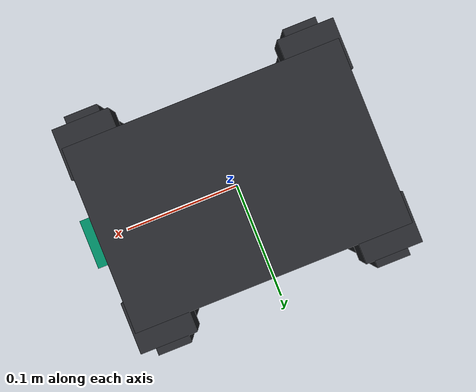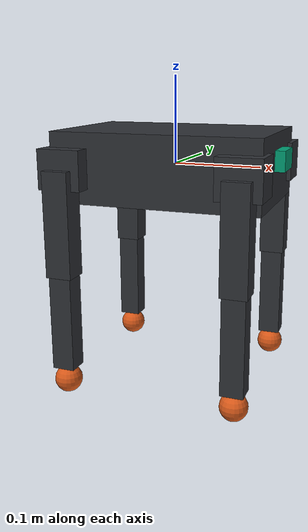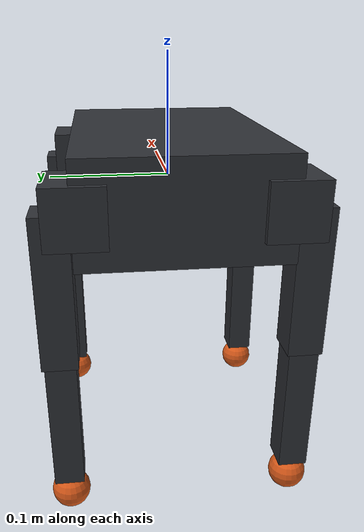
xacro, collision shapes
<?xml version="1.0"?>
<!--
  Copyright (c) 2026 Mustafa Gulsoy.
  SPDX-License-Identifier: AGPL-3.0-or-later
-->
<robot xmlns:xacro="http://www.ros.org/wiki/xacro" name="quadruped_v2">

  <xacro:arg name="use_sim" default="true"/>
  <!-- Topic prefix the topic_based hardware talks to on real hardware; the
       STM32 owns the 1 kHz loop and speaks micro-ROS on these topics. -->
  <xacro:arg name="hw_topic_ns" default="motion"/>

  <xacro:include filename="$(find neml_description)/urdf/inertia.xacro"/>
  <xacro:include filename="$(find neml_description)/urdf/leg.xacro"/>
  <xacro:include filename="$(find neml_description)/urdf/quadruped_v2.ros2_control.xacro"/>

  <xacro:property name="body_len"    value="0.240"/>
  <xacro:property name="body_wid"    value="0.160"/>
  <xacro:property name="body_h"      value="0.080"/>
  <xacro:property name="hip_x"       value="0.100"/>
  <xacro:property name="hip_y"       value="0.065"/>
  <xacro:property name="hip_z"       value="0.000"/>
  <xacro:property name="upper_len"   value="0.120"/>
  <xacro:property name="lower_len"   value="0.110"/>
  <xacro:property name="foot_radius" value="0.016"/>

  <xacro:property name="joint_effort_nm"     value="2.5"/>
  <xacro:property name="joint_velocity_rads" value="6.0"/>

  <!-- Calibration knobs (SS11.3 fit targets: joint damping, friction).
       scripts/calibration/ writes these back after a reality-gap run. -->
  <xacro:property name="joint_damping"  value="0.020"/>
  <xacro:property name="joint_friction" value="0.005"/>

  <!-- Joint travel. Mechanical hard stops, not a control policy. -->
  <xacro:property name="hip_yaw_range"   value="0.70"/>
  <xacro:property name="hip_pitch_range" value="1.60"/>
  <xacro:property name="knee_range"      value="2.40"/>
  <xacro:property name="ankle_range"     value="1.40"/>

  <material name="neml_shell"><color rgba="0.18 0.19 0.21 1.0"/></material>
  <material name="neml_tpu"><color rgba="0.85 0.35 0.10 1.0"/></material>

  <!-- ============================ body ============================ -->
  <link name="base_link">
    <inertial>
      <origin xyz="0 0 0" rpy="0 0 0"/>
      <mass value="${base_mass}"/>
      <inertia ixx="${base_ixx}" ixy="${base_ixy}" ixz="${base_ixz}"
               iyy="${base_iyy}" iyz="${base_iyz}" izz="${base_izz}"/>
    </inertial>
    <visual>
      <origin xyz="0 0 0" rpy="0 0 0"/>
      <geometry>
        <mesh filename="package://neml_description/meshes/body_shell.stl" scale="1 1 1"/>
      </geometry>
      <material name="neml_shell"/>
    </visual>
    <collision>
      <!-- primitive box, deliberately not the shell mesh (SS12.2) -->
      <origin xyz="0 0 0" rpy="0 0 0"/>
      <geometry>
        <box size="${body_len} ${body_wid} ${body_h}"/>
      </geometry>
    </collision>
  </link>

  <!-- ============================ legs ============================
       prefix: f/r = front/rear, l/r = left/right. -->
  <xacro:neml_leg prefix="fl" x_sign="1"  y_sign="1"/>
  <xacro:neml_leg prefix="fr" x_sign="1"  y_sign="-1"/>
  <xacro:neml_leg prefix="rl" x_sign="-1" y_sign="1"/>
  <xacro:neml_leg prefix="rr" x_sign="-1" y_sign="-1"/>

  <!-- =========================== bno085 IMU =========================== -->
  <link name="imu_link"/>
  <joint name="imu_joint" type="fixed">
    <parent link="base_link"/>
    <child link="imu_link"/>
    <origin xyz="0 0 ${body_h / 2}" rpy="0 0 0"/>
  </joint>
  <gazebo reference="imu_link">
    <sensor name="bno085" type="imu">
      <always_on>true</always_on>
      <update_rate>100</update_rate>
      <!-- SS11.4 nominal gyro noise sigma 0.01 rad/s; the sim runner
           randomizes it +-15% from the run seed, never from wall clock. -->
      <imu>
        <angular_velocity>
          <x><noise type="gaussian"><mean>0.0</mean><stddev>0.01</stddev></noise></x>
          <y><noise type="gaussian"><mean>0.0</mean><stddev>0.01</stddev></noise></y>
          <z><noise type="gaussian"><mean>0.0</mean><stddev>0.01</stddev></noise></z>
        </angular_velocity>
        <linear_acceleration>
          <x><noise type="gaussian"><mean>0.0</mean><stddev>0.05</stddev></noise></x>
          <y><noise type="gaussian"><mean>0.0</mean><stddev>0.05</stddev></noise></y>
          <z><noise type="gaussian"><mean>0.0</mean><stddev>0.05</stddev></noise></z>
        </linear_acceleration>
      </imu>
    </sensor>
  </gazebo>

  <!-- ====================== realsense d405 depth ====================== -->
  <link name="camera_link">
    <inertial>
      <origin xyz="0 0 0" rpy="0 0 0"/>
      <mass value="0.042"/>
      <inertia ixx="0.0000060" ixy="0.0" ixz="0.0"
               iyy="0.0000020" iyz="0.0" izz="0.0000060"/>
    </inertial>
    <collision>
      <origin xyz="0 0 0" rpy="0 0 0"/>
      <geometry>
        <box size="0.023 0.042 0.023"/>
      </geometry>
    </collision>
  </link>
  <joint name="camera_joint" type="fixed">
    <parent link="base_link"/>
    <child link="camera_link"/>
    <origin xyz="${body_len / 2} 0 0.010" rpy="0 0 0"/>
  </joint>
  <!-- REP-103 optical frame: z forward, x right, y down -->
  <link name="camera_depth_optical_frame"/>
  <joint name="camera_depth_optical_joint" type="fixed">
    <parent link="camera_link"/>
    <child link="camera_depth_optical_frame"/>
    <origin xyz="0 0 0" rpy="${-pi/2} 0 ${-pi/2}"/>
  </joint>
  <gazebo reference="camera_link">
    <sensor name="d405" type="rgbd_camera">
      <always_on>true</always_on>
      <update_rate>15</update_rate>
      <topic>d405</topic>
      <gz_frame_id>camera_depth_optical_frame</gz_frame_id>
      <camera>
        <horizontal_fov>1.274</horizontal_fov>
        <image><width>424</width><height>240</height><format>R8G8B8</format></image>
        <clip><near>0.07</near><far>3.0</far></clip>
      </camera>
    </sensor>
  </gazebo>

  <link name="ina226_5v_link"/>
  <joint name="ina226_5v_joint" type="fixed">
    <parent link="base_link"/>
    <child link="ina226_5v_link"/>
    <origin xyz="-0.060 0.040 0.0" rpy="0 0 0"/>
  </joint>
  <link name="ina226_3v3_link"/>
  <joint name="ina226_3v3_joint" type="fixed">
    <parent link="base_link"/>
    <child link="ina226_3v3_link"/>
    <origin xyz="-0.060 -0.040 0.0" rpy="0 0 0"/>
  </joint>

  <!-- ========================= ros2_control ========================= -->
  <xacro:neml_ros2_control use_sim="$(arg use_sim)" hw_topic_ns="$(arg hw_topic_ns)"/>

</robot>

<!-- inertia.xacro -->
<!--
  Copyright (c) 2026 Mustafa Gulsoy.
  SPDX-License-Identifier: AGPL-3.0-or-later
-->
<robot xmlns:xacro="http://www.ros.org/wiki/xacro">

  <!-- base_link: body shell + compute + battery tray -->
  <xacro:property name="base_mass"  value="1.110"/>
  <xacro:property name="base_ixx"   value="0.00296000"/>
  <xacro:property name="base_iyy"   value="0.00592000"/>
  <xacro:property name="base_izz"   value="0.00769600"/>
  <xacro:property name="base_ixy"   value="0.0"/>
  <xacro:property name="base_ixz"   value="0.0"/>
  <xacro:property name="base_iyz"   value="0.0"/>

  <!-- hip link: yaw bracket carrying one sts3215 -->
  <xacro:property name="hip_mass"   value="0.060"/>
  <xacro:property name="hip_ixx"    value="0.00002025"/>
  <xacro:property name="hip_iyy"    value="0.00002263"/>
  <xacro:property name="hip_izz"    value="0.00002263"/>
  <xacro:property name="hip_ixy"    value="0.0"/>
  <xacro:property name="hip_ixz"    value="0.0"/>
  <xacro:property name="hip_iyz"    value="0.0"/>

  <!-- upper link: leg_link_v1, length_mm 120, wall_mm 2.0, rib_count 3 -->
  <xacro:property name="upper_mass" value="0.110"/>
  <xacro:property name="upper_ixx"  value="0.00013919"/>
  <xacro:property name="upper_iyy"  value="0.00014025"/>
  <xacro:property name="upper_izz"  value="0.00001544"/>
  <xacro:property name="upper_ixy"  value="0.0"/>
  <xacro:property name="upper_ixz"  value="0.0"/>
  <xacro:property name="upper_iyz"  value="0.0"/>

  <!-- lower link: leg_link_v1, length_mm 110, wall_mm 1.8 -->
  <xacro:property name="lower_mass" value="0.090"/>
  <xacro:property name="lower_ixx"  value="0.00009507"/>
  <xacro:property name="lower_iyy"  value="0.00009582"/>
  <xacro:property name="lower_izz"  value="0.00000939"/>
  <xacro:property name="lower_ixy"  value="0.0"/>
  <xacro:property name="lower_ixz"  value="0.0"/>
  <xacro:property name="lower_iyz"  value="0.0"/>

  <!-- foot link: foot_pad_v1, TPU, diameter_mm 32, wall_mm 2.4 -->
  <xacro:property name="foot_mass"  value="0.040"/>
  <xacro:property name="foot_ixx"   value="0.00000450"/>
  <xacro:property name="foot_iyy"   value="0.00000450"/>
  <xacro:property name="foot_izz"   value="0.00000450"/>
  <xacro:property name="foot_ixy"   value="0.0"/>
  <xacro:property name="foot_ixz"   value="0.0"/>
  <xacro:property name="foot_iyz"   value="0.0"/>

</robot>

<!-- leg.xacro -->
<!--
  Copyright (c) 2026 Mustafa Gulsoy.
  SPDX-License-Identifier: AGPL-3.0-or-later
-->
<robot xmlns:xacro="http://www.ros.org/wiki/xacro">

  <xacro:macro name="neml_leg" params="prefix x_sign y_sign">

    <!-- ============================ hip ============================ -->
    <link name="${prefix}_hip_link">
      <inertial>
        <origin xyz="0 ${y_sign * 0.012} 0" rpy="0 0 0"/>
        <mass value="${hip_mass}"/>
        <inertia ixx="${hip_ixx}" ixy="${hip_ixy}" ixz="${hip_ixz}"
                 iyy="${hip_iyy}" iyz="${hip_iyz}" izz="${hip_izz}"/>
      </inertial>
      <visual>
        <origin xyz="0 0 0" rpy="0 0 0"/>
        <geometry>
          <mesh filename="package://neml_description/meshes/hip_link.stl" scale="1 1 1"/>
        </geometry>
        <material name="neml_shell"/>
      </visual>
      <collision>
        <!-- primitive, not the mesh (SS12.2) -->
        <origin xyz="0 ${y_sign * 0.012} 0" rpy="0 0 0"/>
        <geometry>
          <box size="0.050 0.045 0.045"/>
        </geometry>
      </collision>
    </link>

    <joint name="${prefix}_hip_yaw" type="revolute">
      <parent link="base_link"/>
      <child link="${prefix}_hip_link"/>
      <origin xyz="${x_sign * hip_x} ${y_sign * hip_y} ${hip_z}" rpy="0 0 0"/>
      <axis xyz="1 0 0"/>
      <limit lower="${-hip_yaw_range}" upper="${hip_yaw_range}"
             effort="${joint_effort_nm}" velocity="${joint_velocity_rads}"/>
      <dynamics damping="${joint_damping}" friction="${joint_friction}"/>
    </joint>

    <!-- ========================== upper leg ========================= -->
    <link name="${prefix}_upper_link">
      <inertial>
        <origin xyz="0 0 ${-upper_len / 2}" rpy="0 0 0"/>
        <mass value="${upper_mass}"/>
        <inertia ixx="${upper_ixx}" ixy="${upper_ixy}" ixz="${upper_ixz}"
                 iyy="${upper_iyy}" iyz="${upper_iyz}" izz="${upper_izz}"/>
      </inertial>
      <visual>
        <origin xyz="0 0 0" rpy="0 0 0"/>
        <geometry>
          <mesh filename="package://neml_description/meshes/upper_link.stl" scale="1 1 1"/>
        </geometry>
        <material name="neml_shell"/>
      </visual>
      <collision>
        <origin xyz="0 0 ${-upper_len / 2}" rpy="0 0 0"/>
        <geometry>
          <box size="0.030 0.028 ${upper_len}"/>
        </geometry>
      </collision>
    </link>

    <joint name="${prefix}_hip_pitch" type="revolute">
      <parent link="${prefix}_hip_link"/>
      <child link="${prefix}_upper_link"/>
      <origin xyz="0 ${y_sign * 0.030} 0" rpy="0 0 0"/>
      <axis xyz="0 1 0"/>
      <limit lower="${-hip_pitch_range}" upper="${hip_pitch_range}"
             effort="${joint_effort_nm}" velocity="${joint_velocity_rads}"/>
      <dynamics damping="${joint_damping}" friction="${joint_friction}"/>
    </joint>

    <!-- ========================== lower leg ========================= -->
    <link name="${prefix}_lower_link">
      <inertial>
        <origin xyz="0 0 ${-lower_len / 2}" rpy="0 0 0"/>
        <mass value="${lower_mass}"/>
        <inertia ixx="${lower_ixx}" ixy="${lower_ixy}" ixz="${lower_ixz}"
                 iyy="${lower_iyy}" iyz="${lower_iyz}" izz="${lower_izz}"/>
      </inertial>
      <visual>
        <origin xyz="0 0 0" rpy="0 0 0"/>
        <geometry>
          <mesh filename="package://neml_description/meshes/lower_link.stl" scale="1 1 1"/>
        </geometry>
        <material name="neml_shell"/>
      </visual>
      <collision>
        <origin xyz="0 0 ${-lower_len / 2}" rpy="0 0 0"/>
        <geometry>
          <box size="0.026 0.024 ${lower_len}"/>
        </geometry>
      </collision>
    </link>

    <joint name="${prefix}_knee" type="revolute">
      <parent link="${prefix}_upper_link"/>
      <child link="${prefix}_lower_link"/>
      <origin xyz="0 0 ${-upper_len}" rpy="0 0 0"/>
      <axis xyz="0 1 0"/>
      <limit lower="${-knee_range}" upper="0.0"
             effort="${joint_effort_nm}" velocity="${joint_velocity_rads}"/>
      <dynamics damping="${joint_damping}" friction="${joint_friction}"/>
    </joint>

    <!-- ============================ foot ============================ -->
    <link name="${prefix}_foot_link">
      <inertial>
        <origin xyz="0 0 ${-foot_radius}" rpy="0 0 0"/>
        <mass value="${foot_mass}"/>
        <inertia ixx="${foot_ixx}" ixy="${foot_ixy}" ixz="${foot_ixz}"
                 iyy="${foot_iyy}" iyz="${foot_iyz}" izz="${foot_izz}"/>
      </inertial>
      <visual>
        <origin xyz="0 0 0" rpy="0 0 0"/>
        <geometry>
          <mesh filename="package://neml_description/meshes/foot_pad.stl" scale="1 1 1"/>
        </geometry>
        <material name="neml_tpu"/>
      </visual>
      <collision>
        <!-- sphere: the only contact primitive that keeps DART stable at
             max_step_size 0.001 (SS11.1) without a contact-patch hack -->
        <origin xyz="0 0 ${-foot_radius}" rpy="0 0 0"/>
        <geometry>
          <sphere radius="${foot_radius}"/>
        </geometry>
      </collision>
    </link>

    <joint name="${prefix}_ankle" type="revolute">
      <parent link="${prefix}_lower_link"/>
      <child link="${prefix}_foot_link"/>
      <origin xyz="0 0 ${-lower_len}" rpy="0 0 0"/>
      <axis xyz="0 1 0"/>
      <limit lower="${-ankle_range}" upper="${ankle_range}"
             effort="${joint_effort_nm}" velocity="${joint_velocity_rads}"/>
      <dynamics damping="${joint_damping}" friction="${joint_friction}"/>
    </joint>

    <!-- Gazebo surface properties: SS11.4 nominal friction 0.7, randomized
         +-15% per run by the sim runner, never edited here. -->
    <gazebo reference="${prefix}_foot_link">
      <mu1>0.7</mu1>
      <mu2>0.7</mu2>
      <sensor name="${prefix}_foot_contact" type="contact">
        <always_on>true</always_on>
        <update_rate>200</update_rate>
        <contact>
          <collision>${prefix}_foot_link_collision</collision>
        </contact>
      </sensor>
    </gazebo>

  </xacro:macro>
</robot>
